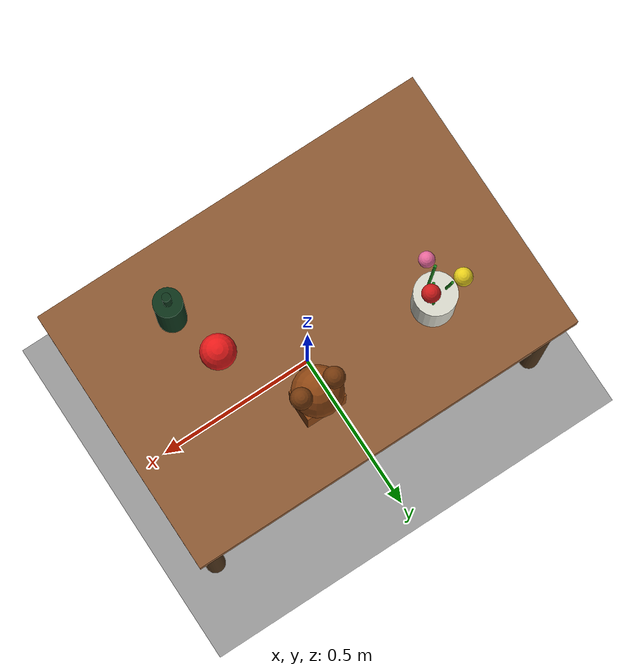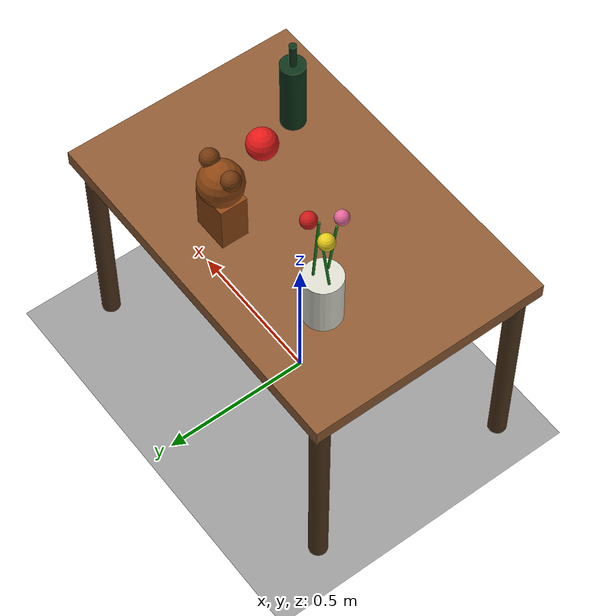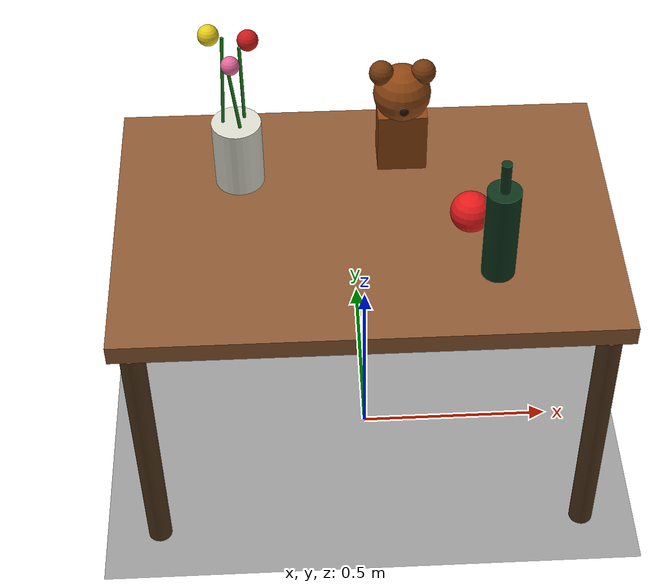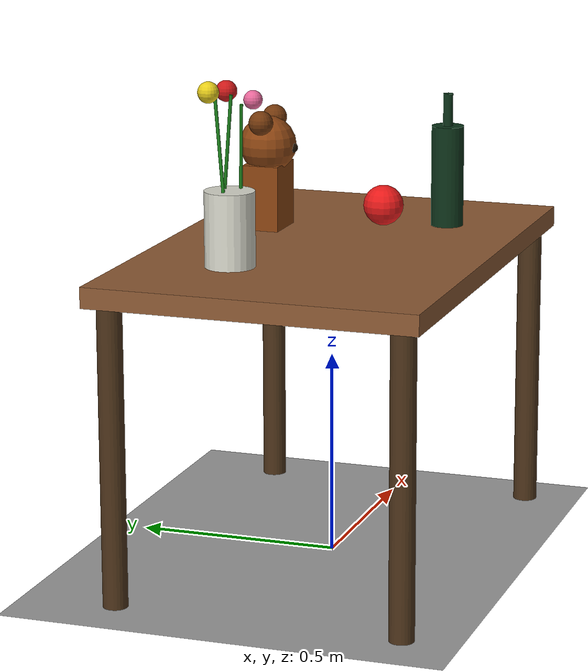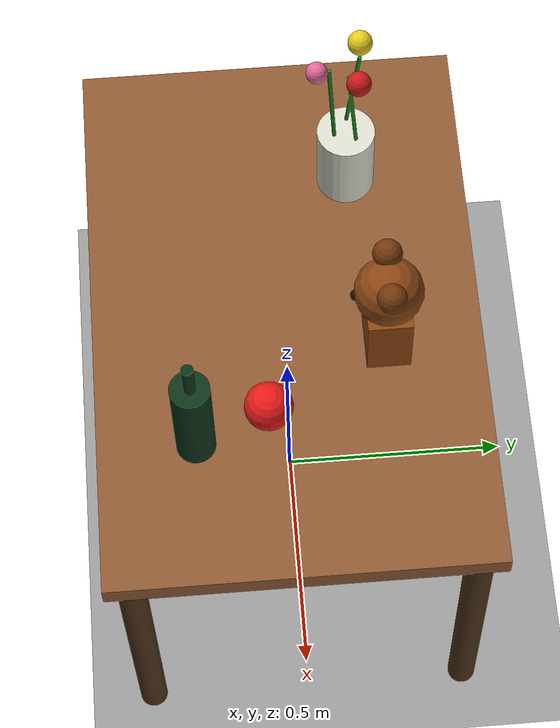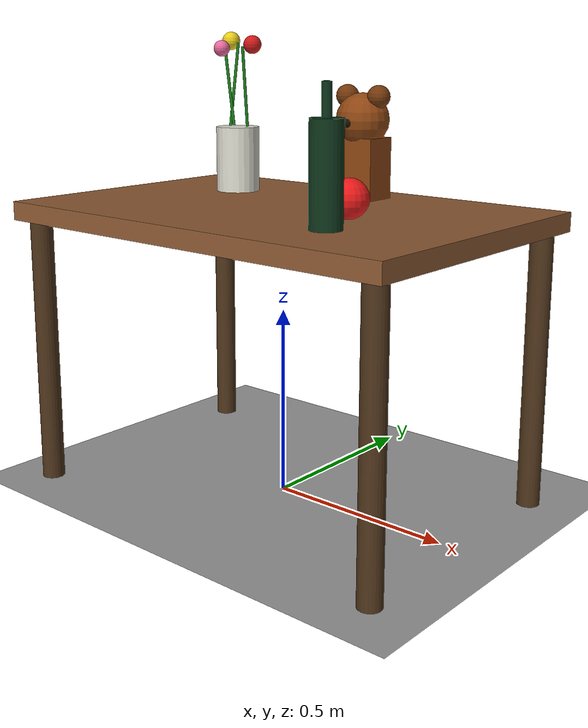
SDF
<?xml version="1.0"?>
<sdf version="1.9">
  <world name="table_scene">
    <physics name="1ms" type="ignored">
      <max_step_size>0.001</max_step_size>
      <real_time_factor>1.0</real_time_factor>
    </physics>
    <plugin filename="gz-sim-physics-system" name="gz::sim::systems::Physics"></plugin>
    <plugin filename="gz-sim-user-commands-system" name="gz::sim::systems::UserCommands"></plugin>
    <plugin filename="gz-sim-scene-broadcaster-system" name="gz::sim::systems::SceneBroadcaster"></plugin>
    <plugin filename="gz-sim-sensors-system" name="gz::sim::systems::Sensors">
      <render_engine>ogre2</render_engine>
    </plugin>
    <light type="directional" name="sun">
      <cast_shadows>true</cast_shadows>
      <pose>0 0 10 0 0 0</pose>
      <diffuse>0.8 0.8 0.8 1</diffuse>
      <specular>0.2 0.2 0.2 1</specular>
      <direction>-0.5 0.1 -0.9</direction>
    </light>

    <model name="ground_plane">
      <static>true</static>
      <link name="link">
        <collision name="collision">
          <geometry><plane><normal>0 0 1</normal></plane></geometry>
        </collision>
        <visual name="visual">
          <geometry><plane><normal>0 0 1</normal><size>10 10</size></plane></geometry>
          <material><ambient>0.6 0.6 0.6 1</ambient><diffuse>0.6 0.6 0.6 1</diffuse></material>
        </visual>
      </link>
    </model>

    <!-- ===================== TABLE ===================== -->
    <model name="table">
      <static>true</static>
      <pose>0 0 0 0 0 0</pose>
      <link name="table_link">
        <visual name="top_visual">
          <pose>0 0 0.75 0 0 0</pose>
          <geometry><box><size>1.2 0.8 0.05</size></box></geometry>
          <material><ambient>0.55 0.35 0.2 1</ambient><diffuse>0.55 0.35 0.2 1</diffuse></material>
        </visual>
        <collision name="top_collision">
          <pose>0 0 0.75 0 0 0</pose>
          <geometry><box><size>1.2 0.8 0.05</size></box></geometry>
        </collision>

        <visual name="leg1_visual"><pose>0.55 0.35 0.375 0 0 0</pose>
          <geometry><cylinder><radius>0.03</radius><length>0.75</length></cylinder></geometry>
          <material><ambient>0.3 0.2 0.1 1</ambient><diffuse>0.3 0.2 0.1 1</diffuse></material></visual>
        <collision name="leg1_collision"><pose>0.55 0.35 0.375 0 0 0</pose>
          <geometry><cylinder><radius>0.03</radius><length>0.75</length></cylinder></geometry></collision>

        <visual name="leg2_visual"><pose>-0.55 0.35 0.375 0 0 0</pose>
          <geometry><cylinder><radius>0.03</radius><length>0.75</length></cylinder></geometry>
          <material><ambient>0.3 0.2 0.1 1</ambient><diffuse>0.3 0.2 0.1 1</diffuse></material></visual>
        <collision name="leg2_collision"><pose>-0.55 0.35 0.375 0 0 0</pose>
          <geometry><cylinder><radius>0.03</radius><length>0.75</length></cylinder></geometry></collision>

        <visual name="leg3_visual"><pose>0.55 -0.35 0.375 0 0 0</pose>
          <geometry><cylinder><radius>0.03</radius><length>0.75</length></cylinder></geometry>
          <material><ambient>0.3 0.2 0.1 1</ambient><diffuse>0.3 0.2 0.1 1</diffuse></material></visual>
        <collision name="leg3_collision"><pose>0.55 -0.35 0.375 0 0 0</pose>
          <geometry><cylinder><radius>0.03</radius><length>0.75</length></cylinder></geometry></collision>

        <visual name="leg4_visual"><pose>-0.55 -0.35 0.375 0 0 0</pose>
          <geometry><cylinder><radius>0.03</radius><length>0.75</length></cylinder></geometry>
          <material><ambient>0.3 0.2 0.1 1</ambient><diffuse>0.3 0.2 0.1 1</diffuse></material></visual>
        <collision name="leg4_collision"><pose>-0.55 -0.35 0.375 0 0 0</pose>
          <geometry><cylinder><radius>0.03</radius><length>0.75</length></cylinder></geometry></collision>
      </link>
    </model>

    <!-- ===================== WINE BOTTLE ===================== -->
    <model name="wine_bottle">
      <static>true</static>
      <pose>0.3 -0.2 0 0 0 0</pose>
      <link name="bottle_link">
        <visual name="body_visual"><pose>0 0 0.9 0 0 0</pose>
          <geometry><cylinder><radius>0.04</radius><length>0.25</length></cylinder></geometry>
          <material><ambient>0.05 0.2 0.1 1</ambient><diffuse>0.05 0.2 0.1 1</diffuse></material></visual>
        <collision name="body_collision"><pose>0 0 0.9 0 0 0</pose>
          <geometry><cylinder><radius>0.04</radius><length>0.25</length></cylinder></geometry></collision>
        <visual name="neck_visual"><pose>0 0 1.065 0 0 0</pose>
          <geometry><cylinder><radius>0.012</radius><length>0.08</length></cylinder></geometry>
          <material><ambient>0.05 0.2 0.1 1</ambient><diffuse>0.05 0.2 0.1 1</diffuse></material></visual>
        <collision name="neck_collision"><pose>0 0 1.065 0 0 0</pose>
          <geometry><cylinder><radius>0.012</radius><length>0.08</length></cylinder></geometry></collision>
      </link>
    </model>

    <!-- ===================== VASE WITH FLOWERS ===================== -->
    <model name="vase_with_flowers">
      <static>true</static>
      <pose>-0.3 0.15 0 0 0 0</pose>
      <link name="vase_link">
        <visual name="vase_visual"><pose>0 0 0.865 0 0 0</pose>
          <geometry><cylinder><radius>0.06</radius><length>0.18</length></cylinder></geometry>
          <material><ambient>0.85 0.85 0.8 1</ambient><diffuse>0.85 0.85 0.8 1</diffuse></material></visual>
        <collision name="vase_collision"><pose>0 0 0.865 0 0 0</pose>
          <geometry><cylinder><radius>0.06</radius><length>0.18</length></cylinder></geometry></collision>
        <visual name="stem1_visual"><pose>0.02 0.01 1.065 0.08 0 0</pose>
          <geometry><cylinder><radius>0.004</radius><length>0.22</length></cylinder></geometry>
          <material><ambient>0.1 0.5 0.1 1</ambient><diffuse>0.1 0.5 0.1 1</diffuse></material></visual>
        <visual name="head1_visual"><pose>0.04 0.02 1.18 0 0 0</pose>
          <geometry><sphere><radius>0.025</radius></sphere></geometry>
          <material><ambient>0.8 0.1 0.1 1</ambient><diffuse>0.8 0.1 0.1 1</diffuse></material></visual>
        <visual name="stem2_visual"><pose>-0.025 0.015 1.07 -0.1 0.05 0</pose>
          <geometry><cylinder><radius>0.004</radius><length>0.23</length></cylinder></geometry>
          <material><ambient>0.1 0.5 0.1 1</ambient><diffuse>0.1 0.5 0.1 1</diffuse></material></visual>
        <visual name="head2_visual"><pose>-0.05 0.03 1.19 0 0 0</pose>
          <geometry><sphere><radius>0.025</radius></sphere></geometry>
          <material><ambient>0.9 0.8 0.1 1</ambient><diffuse>0.9 0.8 0.1 1</diffuse></material></visual>
        <visual name="stem3_visual"><pose>0.0 -0.03 1.06 0.05 -0.1 0</pose>
          <geometry><cylinder><radius>0.004</radius><length>0.2</length></cylinder></geometry>
          <material><ambient>0.1 0.5 0.1 1</ambient><diffuse>0.1 0.5 0.1 1</diffuse></material></visual>
        <visual name="head3_visual"><pose>0.0 -0.06 1.17 0 0 0</pose>
          <geometry><sphere><radius>0.022</radius></sphere></geometry>
          <material><ambient>0.9 0.4 0.6 1</ambient><diffuse>0.9 0.4 0.6 1</diffuse></material></visual>
      </link>
    </model>

    <!-- ===================== TEDDY BEAR ===================== -->
    <!-- sitting at (0.1, 0.2) on the table — brown body + head + ears -->
    <model name="teddy_bear">
      <static>true</static>
      <pose>0.1 0.2 0 0 0 0</pose>
      <link name="teddy_link">
        <!-- body -->
        <visual name="body_visual"><pose>0 0 0.865 0 0 0</pose>
          <geometry><box><size>0.12 0.09 0.16</size></box></geometry>
          <material><ambient>0.55 0.27 0.07 1</ambient><diffuse>0.55 0.27 0.07 1</diffuse></material></visual>
        <collision name="body_collision"><pose>0 0 0.865 0 0 0</pose>
          <geometry><box><size>0.12 0.09 0.16</size></box></geometry></collision>
        <!-- head -->
        <visual name="head_visual"><pose>0 0 0.99 0 0 0</pose>
          <geometry><sphere><radius>0.07</radius></sphere></geometry>
          <material><ambient>0.55 0.27 0.07 1</ambient><diffuse>0.55 0.27 0.07 1</diffuse></material></visual>
        <collision name="head_collision"><pose>0 0 0.99 0 0 0</pose>
          <geometry><sphere><radius>0.07</radius></sphere></geometry></collision>
        <!-- left ear -->
        <visual name="ear_left_visual"><pose>-0.05 0 1.05 0 0 0</pose>
          <geometry><sphere><radius>0.03</radius></sphere></geometry>
          <material><ambient>0.45 0.22 0.05 1</ambient><diffuse>0.45 0.22 0.05 1</diffuse></material></visual>
        <!-- right ear -->
        <visual name="ear_right_visual"><pose>0.05 0 1.05 0 0 0</pose>
          <geometry><sphere><radius>0.03</radius></sphere></geometry>
          <material><ambient>0.45 0.22 0.05 1</ambient><diffuse>0.45 0.22 0.05 1</diffuse></material></visual>
        <!-- face — nose dot -->
        <visual name="nose_visual"><pose>0 -0.065 0.985 0 0 0</pose>
          <geometry><sphere><radius>0.012</radius></sphere></geometry>
          <material><ambient>0.1 0.05 0.0 1</ambient><diffuse>0.1 0.05 0.0 1</diffuse></material></visual>
      </link>
    </model>

    <!-- ===================== BALL ===================== -->
    <!-- bright red ball — positive weight GOAL object -->
    <!-- sits on table surface: base at z=0.775, center at z=0.825 -->
    <model name="ball">
      <static>true</static>
      <pose>0.25 -0.05 0 0 0 0</pose>
      <link name="ball_link">
        <visual name="ball_visual"><pose>0 0 0.825 0 0 0</pose>
          <geometry><sphere><radius>0.05</radius></sphere></geometry>
          <material><ambient>0.9 0.1 0.1 1</ambient><diffuse>0.9 0.1 0.1 1</diffuse></material></visual>
        <collision name="ball_collision"><pose>0 0 0.825 0 0 0</pose>
          <geometry><sphere><radius>0.05</radius></sphere></geometry></collision>
      </link>
    </model>

    <!-- ===================== CAMERA ===================== -->
    <model name="overhead_rgbd_camera">
      <static>true</static>
      <pose>0 -1.4 1.6 0 0.5 1.5708</pose>
      <link name="camera_link">
        <sensor name="rgbd_camera_sensor" type="rgbd_camera">
          <always_on>1</always_on>
          <update_rate>10</update_rate>
          <visualize>true</visualize>
          <topic>rgbd_camera</topic>
          <camera>
            <horizontal_fov>1.25</horizontal_fov>
            <image>
              <width>640</width>
              <height>480</height>
              <format>R8G8B8</format>
            </image>
            <clip>
              <near>0.05</near>
              <far>10.0</far>
            </clip>
          </camera>
        </sensor>
      </link>
    </model>

  </world>
</sdf>
